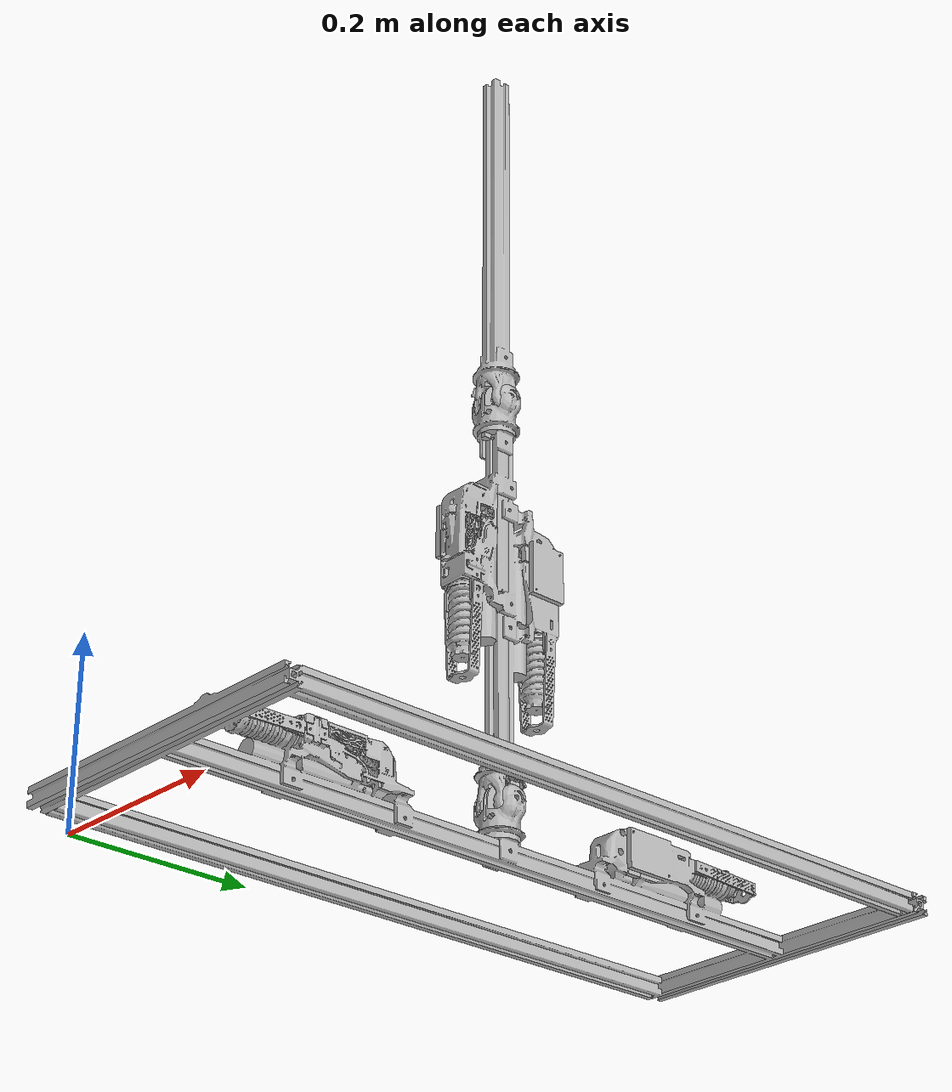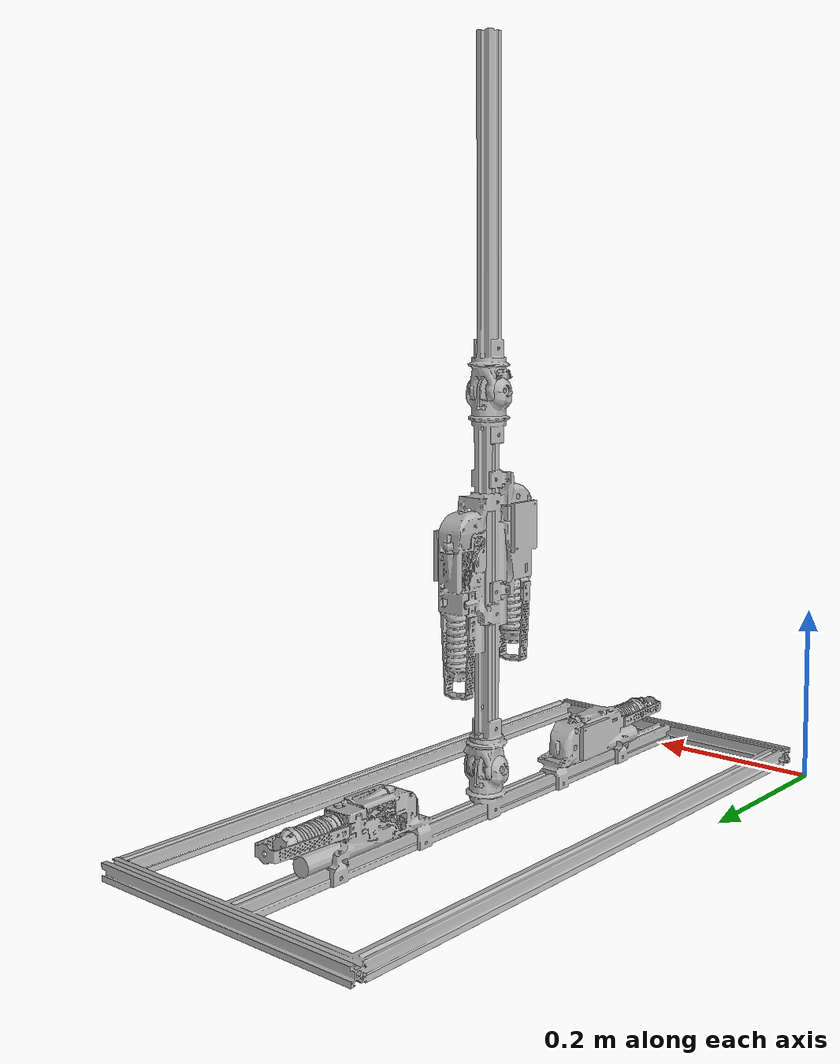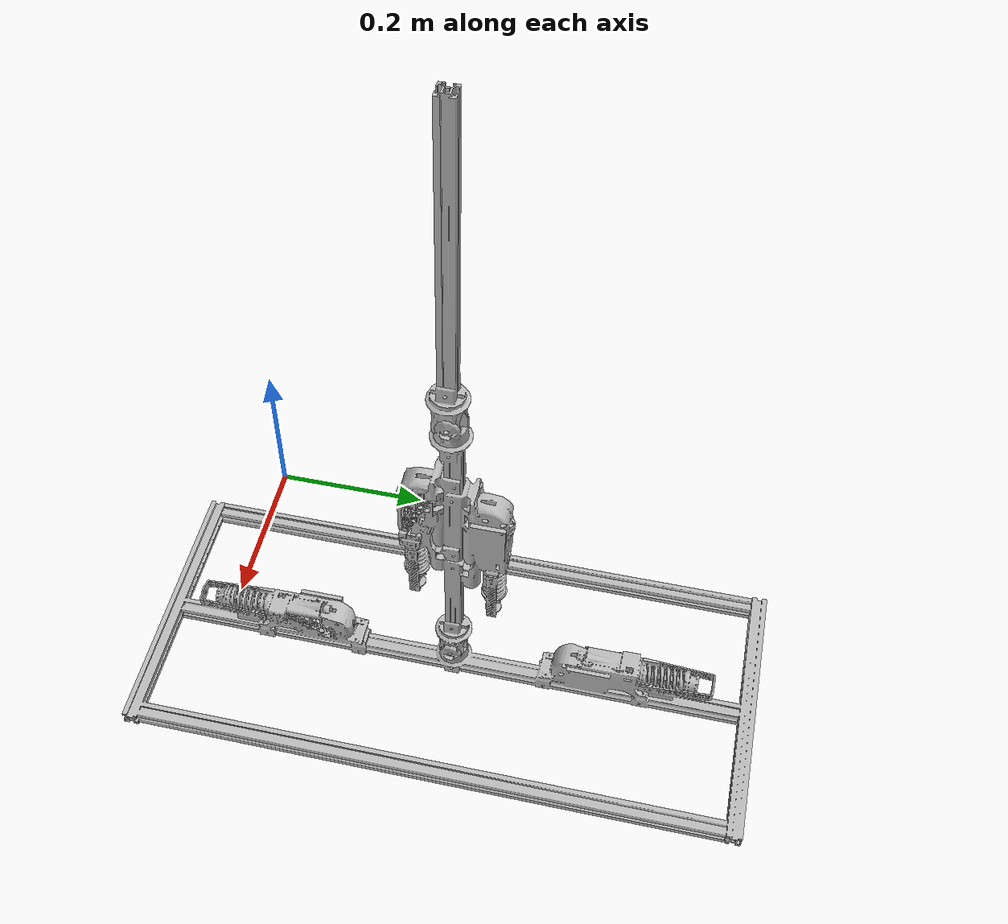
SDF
<sdf version="1.6">
	<model name="musc-le">
		<link name="base">
			<kinematic>true</kinematic>
			<self_collide>false</self_collide>
			<pose frame="">0.23957826975460578 0.301639778486056 -0.0040404461598430655 0.0 -0.0 0.0</pose>
			<inertial>
				<pose frame="">0.0 0.0 0.0 0 0 0</pose>
				<mass>1.7736941745779755</mass>
				<inertia>
					<ixx>0.26644336870054436</ixx>
					<ixy>-0.12844889813594437</ixy>
					<ixz>0.0007876258706259874</ixz>
					<iyy>0.12328607350226468</iyy>
					<iyz>0.001009493929327395</iyz>
					<izz>0.3889425825854345</izz>
				</inertia>
			</inertial>
			<collision name="base_collision">
				<geometry>
					<mesh>
						<uri>model://musc-le/meshes/collisions/base.dae</uri>
						<scale>0.001 0.001 0.001</scale>
					</mesh>
				</geometry>
			</collision>
			<visual name="base_visual">
				<geometry>
					<mesh>
						<uri>model://musc-le/meshes/visuals/base.dae</uri>
						<scale>0.001 0.001 0.001</scale>
					</mesh>
				</geometry>
			</visual>
		</link>
		<link name="lower_arm">
			<self_collide>false</self_collide>
			<pose frame="">0.23903912786569176 0.3020852713062623 0.26729174484446844 0.0 -0.0 0.0</pose>
			<inertial>
				<pose frame="">0.0 0.0 0.0 0 0 0</pose>
				<mass>2.6629267585832319</mass>
				<inertia>
					<ixx>0.11962789096363666</ixx>
					<ixy>-0.048124291773881854</ixy>
					<ixz>-0.04440482012156901</ixz>
					<iyy>0.09622603986972515</iyy>
					<iyz>-0.056339575354820516</iyz>
					<izz>0.09920838157250772</izz>
				</inertia>
			</inertial>
			<collision name="lower_arm_collision">
				<geometry>
					<mesh>
						<uri>model://musc-le/meshes/collisions/lower_arm.dae</uri>
						<scale>0.001 0.001 0.001</scale>
					</mesh>
				</geometry>
			</collision>
			<visual name="lower_arm_visual">
				<geometry>
					<mesh>
						<uri>model://musc-le/meshes/visuals/lower_arm.dae</uri>
						<scale>0.001 0.001 0.001</scale>
					</mesh>
				</geometry>
			</visual>
		</link>
		<link name="upper_arm">
			<self_collide>false</self_collide>
			<pose frame="">0.24047286580334848 0.2964623740503764 0.5988889249748395 0.0 -0.0 0.0</pose>
			<inertial>
				<pose frame="">0.0 0.0 0.0 0 0 0</pose>
				<mass>0.19546573395199657</mass>
				<inertia>
					<ixx>0.09875572585780393</ixx>
					<ixy>-0.013938850255772264</ixy>
					<ixz>-0.029857585152300914</ixz>
					<iyy>0.09288624160612241</iyy>
					<iyz>-0.036797983975456514</iyz>
					<izz>0.028511074078668243</izz>
				</inertia>
			</inertial>
			<collision name="upper_arm_collision">
				<geometry>
					<mesh>
						<uri>model://musc-le/meshes/collisions/upper_arm.dae</uri>
						<scale>0.001 0.001 0.001</scale>
					</mesh>
				</geometry>
			</collision>
			<visual name="upper_arm_visual">
				<geometry>
					<mesh>
						<uri>model://musc-le/meshes/visuals/upper_arm.dae</uri>
						<scale>0.001 0.001 0.001</scale>
					</mesh>
				</geometry>
			</visual>
		</link>
		<joint name="upper_joint" type="revolute">
			<parent>lower_arm</parent>
			<child>upper_arm</child>
			<pose frame="">-0.004822865803349181 -3.31893305476072e-05 -0.137753391072036 0 0 0</pose>
			<axis>
				<xyz>1.0000000000000002 -8.881784197001256e-16 -9.575673587391985e-16</xyz>
				<limit>
					<lower>-0.6471975511965976</lower>
					<upper>0.6471975511965976</upper>
				</limit>
				<use_parent_model_frame>0</use_parent_model_frame>
			</axis>
		</joint>
		<joint name="lower_joint" type="revolute">
			<parent>base</parent>
			<child>lower_arm</child>
			<pose frame="">-0.016839127865691774 -8.52713062622712e-05 -0.2296310846758187 0 0 0</pose>
			<axis>
				<xyz>-1.0 2.3876466213831606e-16 7.771561172376107e-16</xyz>
				<limit>
					<lower>-1.0471975511965976</lower>
					<upper>1.0471975511965976</upper>
				</limit>
				<use_parent_model_frame>0</use_parent_model_frame>
			</axis>
		</joint>
		<plugin filename="libcardsflow_gazebo_plugin.so" name="cardsflow_gazebo_plugin">
		</plugin>
	</model>
</sdf>
